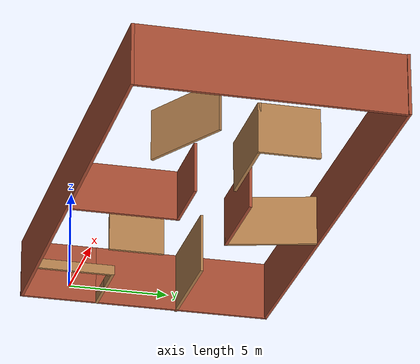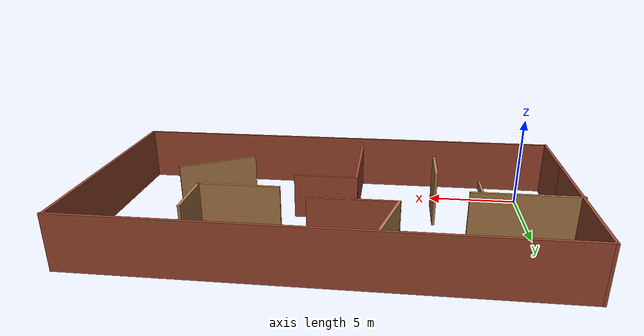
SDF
<?xml version='1.0'?>
<sdf version='1.6'>
  <model name='explore_2'>
    <pose frame=''>10.5435 4.296 0 0 -0 0</pose>
    <link name='Wall_64'>
      <collision name='Wall_64_Collision'>
        <geometry>
          <box>
            <size>2 0.15 0.5</size>
          </box>
        </geometry>
        <pose frame=''>0 0 0.25 0 -0 0</pose>
      </collision>
      <visual name='Wall_64_Visual'>
        <pose frame=''>0 0 0.25 0 -0 0</pose>
        <geometry>
          <box>
            <size>2 0.15 0.5</size>
          </box>
        </geometry>
        <material>
          <script>
            <uri>file://media/materials/scripts/gazebo.material</uri>
            <name>Gazebo/Wood</name>
          </script>
          <ambient>1 1 1 1</ambient>
        </material>
        <meta>
          <layer>0</layer>
        </meta>
      </visual>
      <pose frame=''>-9.6105 -2.5 0 0 -0 0</pose>
    </link>
    <link name='Wall_65'>
      <collision name='Wall_65_Collision'>
        <geometry>
          <box>
            <size>4 0.15 0.5</size>
          </box>
        </geometry>
        <pose frame=''>0 0 0.25 0 -0 0</pose>
      </collision>
      <visual name='Wall_65_Visual'>
        <pose frame=''>0 0 0.25 0 -0 0</pose>
        <geometry>
          <box>
            <size>4 0.15 0.5</size>
          </box>
        </geometry>
        <material>
          <script>
            <uri>file://media/materials/scripts/gazebo.material</uri>
            <name>Gazebo/Wood</name>
          </script>
          <ambient>1 1 1 1</ambient>
        </material>
        <meta>
          <layer>0</layer>
        </meta>
      </visual>
      <pose frame=''>-8.6855 -4.425 0 0 -0 -1.5708</pose>
    </link>
    <link name='Wall_67'>
      <collision name='Wall_67_Collision'>
        <geometry>
          <box>
            <size>2 0.15 0.5</size>
          </box>
        </geometry>
        <pose frame=''>0 0 0.25 0 -0 0</pose>
      </collision>
      <visual name='Wall_67_Visual'>
        <pose frame=''>0 0 0.25 0 -0 0</pose>
        <geometry>
          <box>
            <size>2 0.15 0.5</size>
          </box>
        </geometry>
        <material>
          <script>
            <uri>file://media/materials/scripts/gazebo.material</uri>
            <name>Gazebo/Wood</name>
          </script>
          <ambient>1 1 1 1</ambient>
        </material>
        <meta>
          <layer>0</layer>
        </meta>
      </visual>
      <pose frame=''>-11.4605 -2.5 0 0 -0 3.14159</pose>
    </link>
    <link name='Wall_69'>
      <collision name='Wall_69_Collision'>
        <geometry>
          <box>
            <size>4 0.15 3</size>
          </box>
        </geometry>
        <pose frame=''>0 0 1.5 0 -0 0</pose>
      </collision>
      <visual name='Wall_69_Visual'>
        <pose frame=''>0 0 1.5 0 -0 0</pose>
        <geometry>
          <box>
            <size>4 0.15 3</size>
          </box>
        </geometry>
        <material>
          <script>
            <uri>file://media/materials/scripts/gazebo.material</uri>
            <name>Gazebo/Bricks</name>
          </script>
          <ambient>1 1 1 1</ambient>
        </material>
        <meta>
          <layer>0</layer>
        </meta>
      </visual>
      <pose frame=''>-12.3855 -4.425 0 0 -0 -1.5708</pose>
    </link>
    <link name='Wall_70'>
      <collision name='Wall_70_Collision'>
        <geometry>
          <box>
            <size>24.9475 0.15 3</size>
          </box>
        </geometry>
        <pose frame=''>0 0 1.5 0 -0 0</pose>
      </collision>
      <visual name='Wall_70_Visual'>
        <pose frame=''>0 0 1.5 0 -0 0</pose>
        <geometry>
          <box>
            <size>24.9475 0.15 3</size>
          </box>
        </geometry>
        <material>
          <script>
            <uri>file://media/materials/scripts/gazebo.material</uri>
            <name>Gazebo/Bricks</name>
          </script>
          <ambient>1 1 1 1</ambient>
        </material>
        <meta>
          <layer>0</layer>
        </meta>
      </visual>
      <pose frame=''>0.013 -6.35 0 0 -0 0</pose>
    </link>
    <link name='Wall_71'>
      <collision name='Wall_71_Collision'>
        <geometry>
          <box>
            <size>12.75 0.15 3</size>
          </box>
        </geometry>
        <pose frame=''>0 0 1.5 0 -0 0</pose>
      </collision>
      <visual name='Wall_71_Visual'>
        <pose frame=''>0 0 1.5 0 -0 0</pose>
        <geometry>
          <box>
            <size>12.75 0.15 3</size>
          </box>
        </geometry>
        <material>
          <script>
            <uri>file://media/materials/scripts/gazebo.material</uri>
            <name>Gazebo/Bricks</name>
          </script>
          <ambient>1 1 1 1</ambient>
        </material>
        <meta>
          <layer>0</layer>
        </meta>
      </visual>
      <pose frame=''>12.4115 -0.05 0 0 -0 1.5708</pose>
    </link>
    <link name='Wall_73'>
      <collision name='Wall_73_Collision'>
        <geometry>
          <box>
            <size>9 0.15 3</size>
          </box>
        </geometry>
        <pose frame=''>0 0 1.5 0 -0 0</pose>
      </collision>
      <visual name='Wall_73_Visual'>
        <pose frame=''>0 0 1.5 0 -0 0</pose>
        <geometry>
          <box>
            <size>9 0.15 3</size>
          </box>
        </geometry>
        <material>
          <script>
            <uri>file://media/materials/scripts/gazebo.material</uri>
            <name>Gazebo/Bricks</name>
          </script>
          <ambient>1 1 1 1</ambient>
        </material>
        <meta>
          <layer>0</layer>
        </meta>
      </visual>
      <pose frame=''>-12.3855 1.925 0 0 -0 1.5708</pose>
    </link>
    <link name='Wall_74'>
      <collision name='Wall_74_Collision'>
        <geometry>
          <box>
            <size>25 0.15 3</size>
          </box>
        </geometry>
        <pose frame=''>0 0 1.5 0 -0 0</pose>
      </collision>
      <visual name='Wall_74_Visual'>
        <pose frame=''>0 0 1.5 0 -0 0</pose>
        <geometry>
          <box>
            <size>25 0.15 3</size>
          </box>
        </geometry>
        <material>
          <script>
            <uri>file://media/materials/scripts/gazebo.material</uri>
            <name>Gazebo/Bricks</name>
          </script>
          <ambient>1 1 1 1</ambient>
        </material>
        <meta>
          <layer>0</layer>
        </meta>
      </visual>
      <pose frame=''>0.0395 6.35 0 0 -0 0</pose>
    </link>
    <link name='Wall_76'>
      <collision name='Wall_76_Collision'>
        <geometry>
          <box>
            <size>5.5 0.15 3</size>
          </box>
        </geometry>
        <pose frame=''>0 0 1.5 0 -0 0</pose>
      </collision>
      <visual name='Wall_76_Visual'>
        <pose frame=''>0 0 1.5 0 -0 0</pose>
        <geometry>
          <box>
            <size>5.5 0.15 3</size>
          </box>
        </geometry>
        <material>
          <script>
            <uri>file://media/materials/scripts/gazebo.material</uri>
            <name>Gazebo/Wood</name>
          </script>
          <ambient>1 1 1 1</ambient>
        </material>
        <meta>
          <layer>0</layer>
        </meta>
      </visual>
      <pose frame=''>-9.7895 1.659 0 0 -0 0</pose>
    </link>
    <link name='Wall_79'>
      <collision name='Wall_79_Collision'>
        <geometry>
          <box>
            <size>2.75 0.15 3</size>
          </box>
        </geometry>
        <pose frame=''>0 0 1.5 0 -0 0</pose>
      </collision>
      <visual name='Wall_79_Visual'>
        <pose frame=''>0 0 1.5 0 -0 0</pose>
        <geometry>
          <box>
            <size>2.75 0.15 3</size>
          </box>
        </geometry>
        <material>
          <script>
            <uri>file://media/materials/scripts/gazebo.material</uri>
            <name>Gazebo/Wood</name>
          </script>
          <ambient>1 1 1 1</ambient>
        </material>
        <meta>
          <layer>0</layer>
        </meta>
      </visual>
      <pose frame=''>-5.5525 -2.015 0 0 -0 -1.5708</pose>
    </link>
    <link name='Wall_82'>
      <collision name='Wall_82_Collision'>
        <geometry>
          <box>
            <size>4.5 0.15 2.5</size>
          </box>
        </geometry>
        <pose frame=''>0 0 1.25 0 -0 0</pose>
      </collision>
      <visual name='Wall_82_Visual'>
        <pose frame=''>0 0 1.25 0 -0 0</pose>
        <geometry>
          <box>
            <size>4.5 0.15 2.5</size>
          </box>
        </geometry>
        <material>
          <script>
            <uri>file://media/materials/scripts/gazebo.material</uri>
            <name>Gazebo/Wood</name>
          </script>
          <ambient>1 1 1 1</ambient>
        </material>
        <meta>
          <layer>0</layer>
        </meta>
      </visual>
      <pose frame=''>-3.07964 4.12539 0 0 -0 1.309</pose>
    </link>
    <link name='Wall_84'>
      <collision name='Wall_84_Collision'>
        <geometry>
          <box>
            <size>4.75 0.15 2.5</size>
          </box>
        </geometry>
        <pose frame=''>0 0 1.25 0 -0 0</pose>
      </collision>
      <visual name='Wall_84_Visual'>
        <pose frame=''>0 0 1.25 0 -0 0</pose>
        <geometry>
          <box>
            <size>4.75 0.15 2.5</size>
          </box>
        </geometry>
        <material>
          <script>
            <uri>file://media/materials/scripts/gazebo.material</uri>
            <name>Gazebo/Bricks</name>
          </script>
          <ambient>1 1 1 1</ambient>
        </material>
        <meta>
          <layer>0</layer>
        </meta>
      </visual>
      <pose frame=''>-1.34257 2.0245 0 0 -0 0</pose>
    </link>
    <link name='Wall_86'>
      <collision name='Wall_86_Collision'>
        <geometry>
          <box>
            <size>5.5 0.15 2.5</size>
          </box>
        </geometry>
        <pose frame=''>0 0 1.25 0 -0 0</pose>
      </collision>
      <visual name='Wall_86_Visual'>
        <pose frame=''>0 0 1.25 0 -0 0</pose>
        <geometry>
          <box>
            <size>5.5 0.15 2.5</size>
          </box>
        </geometry>
        <material>
          <script>
            <uri>file://media/materials/scripts/gazebo.material</uri>
            <name>Gazebo/Bricks</name>
          </script>
          <ambient>1 1 1 1</ambient>
        </material>
        <meta>
          <layer>0</layer>
        </meta>
      </visual>
      <pose frame=''>-1.28632 -3.61448 0 0 -0 -1.5708</pose>
    </link>
    <link name='Wall_88'>
      <collision name='Wall_88_Collision'>
        <geometry>
          <box>
            <size>3.5 0.15 2.5</size>
          </box>
        </geometry>
        <pose frame=''>0 0 1.25 0 -0 0</pose>
      </collision>
      <visual name='Wall_88_Visual'>
        <pose frame=''>0 0 1.25 0 -0 0</pose>
        <geometry>
          <box>
            <size>3.5 0.15 2.5</size>
          </box>
        </geometry>
        <material>
          <script>
            <uri>file://media/materials/scripts/gazebo.material</uri>
            <name>Gazebo/Bricks</name>
          </script>
          <ambient>1 1 1 1</ambient>
        </material>
        <meta>
          <layer>0</layer>
        </meta>
      </visual>
      <pose frame=''>0.388681 -0.939476 0 0 -0 0</pose>
    </link>
    <link name='Wall_90'>
      <collision name='Wall_90_Collision'>
        <geometry>
          <box>
            <size>4.5 0.15 2.5</size>
          </box>
        </geometry>
        <pose frame=''>0 0 1.25 0 -0 0</pose>
      </collision>
      <visual name='Wall_90_Visual'>
        <pose frame=''>0 0 1.25 0 -0 0</pose>
        <geometry>
          <box>
            <size>4.5 0.15 2.5</size>
          </box>
        </geometry>
        <material>
          <script>
            <uri>file://media/materials/scripts/gazebo.material</uri>
            <name>Gazebo/Wood</name>
          </script>
          <ambient>1 1 1 1</ambient>
        </material>
        <meta>
          <layer>0</layer>
        </meta>
      </visual>
      <pose frame=''>4.83881 0.856038 0 0 -0 0</pose>
    </link>
    <link name='Wall_91'>
      <collision name='Wall_91_Collision'>
        <geometry>
          <box>
            <size>3 0.15 2.5</size>
          </box>
        </geometry>
        <pose frame=''>0 0 1.25 0 -0 0</pose>
      </collision>
      <visual name='Wall_91_Visual'>
        <pose frame=''>0 0 1.25 0 -0 0</pose>
        <geometry>
          <box>
            <size>3 0.15 2.5</size>
          </box>
        </geometry>
        <material>
          <script>
            <uri>file://media/materials/scripts/gazebo.material</uri>
            <name>Gazebo/Wood</name>
          </script>
          <ambient>1 1 1 1</ambient>
        </material>
        <meta>
          <layer>0</layer>
        </meta>
      </visual>
      <pose frame=''>7.01381 2.28104 0 0 -0 1.5708</pose>
    </link>
    <link name='Wall_93'>
      <collision name='Wall_93_Collision'>
        <geometry>
          <box>
            <size>4.5 0.15 2.5</size>
          </box>
        </geometry>
        <pose frame=''>0 0 1.25 0 -0 0</pose>
      </collision>
      <visual name='Wall_93_Visual'>
        <pose frame=''>0 0 1.25 0 -0 0</pose>
        <geometry>
          <box>
            <size>4.5 0.15 2.5</size>
          </box>
        </geometry>
        <material>
          <script>
            <uri>file://media/materials/scripts/gazebo.material</uri>
            <name>Gazebo/Wood</name>
          </script>
          <ambient>1 1 1 1</ambient>
        </material>
        <meta>
          <layer>0</layer>
        </meta>
      </visual>
      <pose frame=''>6.96475 -2.58558 0 0 -0 -2.61799</pose>
    </link>
    <static>1</static>
  </model>
</sdf>
